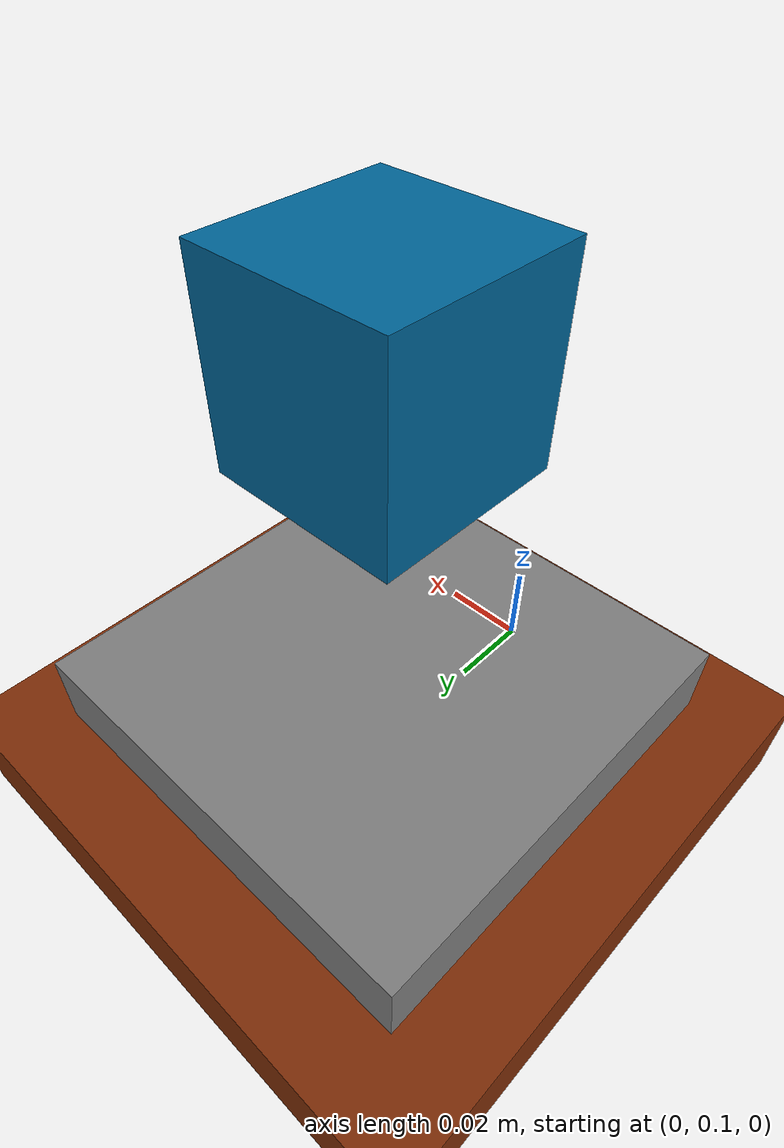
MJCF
<mujoco model="LWR">
  <compiler
    angle="radian"
    meshdir="../../meshes"
    inertiafromgeom="true" />
  <option
    iterations="200"
    timestep="0.001"
    solver="CG"/>
  <size njmax="500" nconmax="100" />
  <visual>
    <map
      fogstart="1.5"
      fogend="3"
      force="0.3"
      />
    <quality
      shadowsize="8192"/>
    <scale
      forcewidth="0.03"
      contactwidth="0.05"
      contactheight="0.03"
      framelength="0.3"
      framewidth="0.02"/>
  </visual>
  <asset>
    <mesh name="small_table" file="utils/small_table.stl"/>
  </asset>
  <worldbody>
    <light
      directional="false"
      cutoff="90"
      exponent="1"
      diffuse="1 1 1"
      specular="0 0 0"
      pos="1 0 1.5"
      dir="-1 0 -2.5"/>
    <body
      name="smalltable"
      pos="0 0 0"
      quat="1 0 0 0">
      <geom
        name="smalltable"
        friction="0.5 0.005 0.0001"
        type="box"
        size="0.25 0.25 0.0125"
        rgba="0.5 0.18 0.03 1"/>
    </body>
    <body
      name="pillbox"
      pos="0 0.15 0.02"
      quat="1 0 0 0">
      <geom
        name="pillbox"
        friction="0.5 0.005 0.0001"
        type="box"
        size="0.05 0.05 0.01"
        mass = "0.100"/>
      <joint
        damping="1"
        name="world_to_pillbox"
        type="free"/>
      <site name="target" pos="0 0 0.0" size="0.05 0.05 0.01" rgba="0 0.3 0.8 0.3" type="box"/>
    </body>
    <body
      name="optoforce"
      pos="0 0.15 0.1"
      quat="1 0 0 0">
      <joint
        name="finger_free_joint"
        type="free"/>
      <geom name="optoforce"  rgba="0.0 0.4 0.6 1" size=".02 .02 .02" type="box" mass ="0.2" />
    </body>
  </worldbody>
  <actuator>
    <motor  gear="1 0 0 0 0 0" joint="finger_free_joint" name="finger_0_wrench_actuator"/>
    <motor  gear="0 1 0 0 0 0" joint="finger_free_joint" name="finger_1_wrench_actuator"/>
    <motor  gear="0 0 1 0 0 0" joint="finger_free_joint" name="finger_2_wrench_actuator"/>
    <motor  gear="0 0 0 1 0 0" joint="finger_free_joint" name="finger_3_wrench_actuator"/>
    <motor  gear="0 0 0 0 1 0" joint="finger_free_joint" name="finger_4_wrench_actuator"/>
    <motor  gear="0 0 0 0 0 1" joint="finger_free_joint" name="finger_5_wrench_actuator"/>

    <motor  gear="1 0 0 0 0 0" joint="world_to_pillbox" name="pillbox_0_wrench_actuator"/>
    <motor  gear="0 1 0 0 0 0" joint="world_to_pillbox" name="pillbox_1_wrench_actuator"/>
    <motor  gear="0 0 1 0 0 0" joint="world_to_pillbox" name="pillbox_2_wrench_actuator"/>
    <motor  gear="0 0 0 1 0 0" joint="world_to_pillbox" name="pillbox_3_wrench_actuator"/>
    <motor  gear="0 0 0 0 1 0" joint="world_to_pillbox" name="pillbox_4_wrench_actuator"/>
    <motor  gear="0 0 0 0 0 1" joint="world_to_pillbox" name="pillbox_5_wrench_actuator"/>
  </actuator>
</mujoco>
